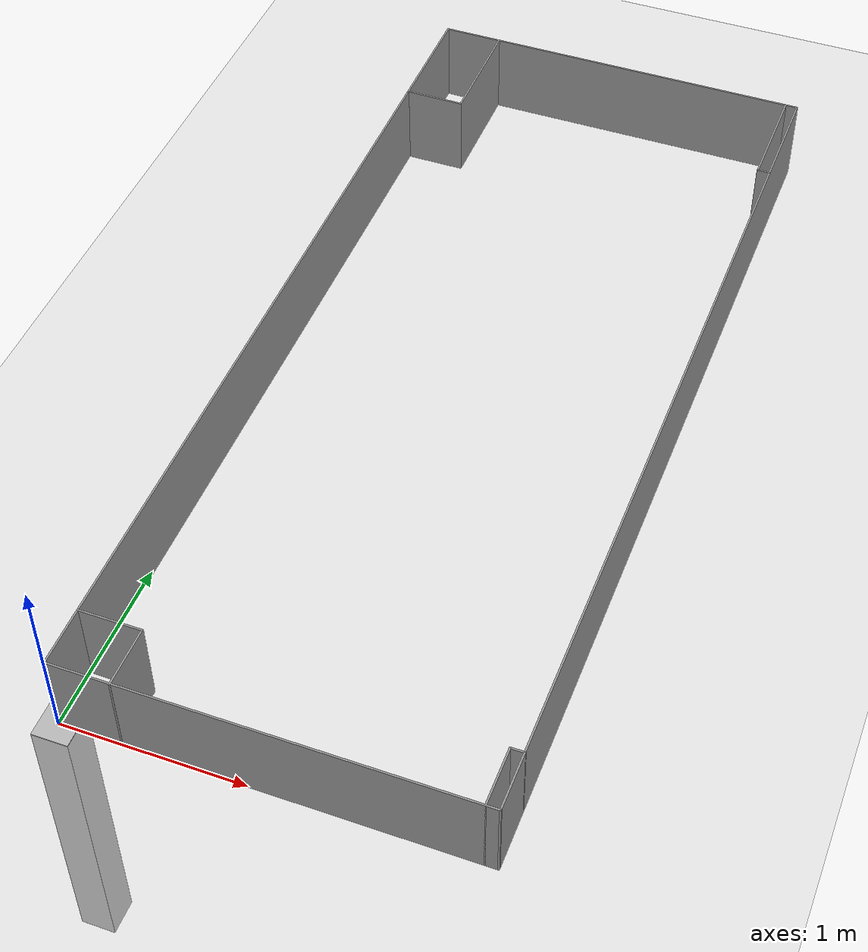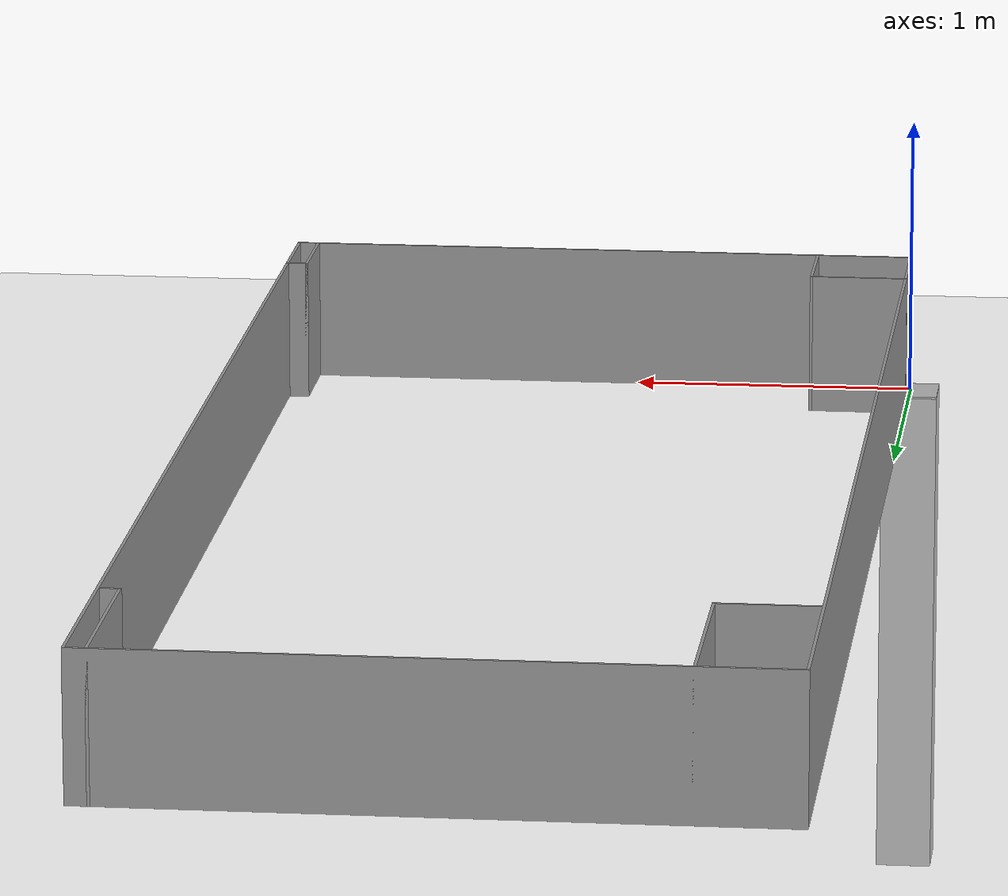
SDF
<sdf version="1.7">
 <world name="default">
  <light name="sun" type="directional">
   <pose>0 0 10 0 -0 0</pose>
   <diffuse>0.8 0.8 0.8 1</diffuse>
   <specular>0.2 0.2 0.2 1</specular>
   <attenuation>
    <range>1000</range>
    <constant>0.9</constant>
    <linear>0.01</linear>
    <quadratic>0.001</quadratic>
   </attenuation>
   <direction>-0.5 0.1 -0.9</direction>
   <spot><inner_angle>0</inner_angle><outer_angle>0</outer_angle><falloff>0</falloff></spot>
  </light>
  <model name="ground_plane">
   <static>1</static>
   <link name="link">
    <collision name="collision">
     <geometry><plane><normal>0 0 1</normal><size>100 100</size></plane></geometry>
     <surface>
      <contact><collide_bitmask>65535</collide_bitmask></contact>
      <friction><ode><mu>100</mu><mu2>50</mu2></ode></friction>
     </surface>
    </collision>
    <visual name="visual">
     <cast_shadows>0</cast_shadows>
     <geometry><plane><normal>0 0 1</normal><size>100 100</size></plane></geometry>
     <material>
      <script><uri>file://media/materials/scripts/gazebo.material</uri><name>Gazebo/Grey</name></script>
     </material>
    </visual>
   </link>
  </model>
  <gravity>0 0 -9.8</gravity>
  <magnetic_field>6e-06 2.3e-05 -4.2e-05</magnetic_field>
  <atmosphere type="adiabatic"/>
  <physics type="ode">
   <max_step_size>0.001</max_step_size>
   <real_time_factor>1</real_time_factor>
   <real_time_update_rate>1000</real_time_update_rate>
  </physics>
  <scene><ambient>0.4 0.4 0.4 1</ambient><background>0.7 0.7 0.7 1</background><shadows>1</shadows></scene>
  <spherical_coordinates>
   <surface_model>EARTH_WGS84</surface_model>
   <latitude_deg>0</latitude_deg>
   <longitude_deg>0</longitude_deg>
   <elevation>0</elevation>
   <heading_deg>0</heading_deg>
  </spherical_coordinates>
  <model name="c205">
   <pose>1.13 2.63 0 0 -0 0</pose>
   <link name="Wall_12">
    <collision name="Wall_12_Collision">
     <geometry><box><size>5.27 0.01 0.5</size></box></geometry>
     <pose>0 0 0.25 0 -0 0</pose>
    </collision>
    <visual name="Wall_12_Visual">
     <pose>0 0 0.25 0 -0 0</pose>
     <geometry><box><size>5.27 0.01 0.5</size></box></geometry>
     <material>
      <script><uri>file://media/materials/scripts/gazebo.material</uri><name>Gazebo/Grey</name></script>
      <ambient>1 1 1 0.1</ambient>
     </material>
     <meta><layer>0</layer></meta>
    </visual>
    <pose>-1.125 0.000538 0 0 -0 1.5708</pose>
   </link>
   <link name="Wall_17">
    <collision name="Wall_17_Collision">
     <geometry><box><size>2.26 0.01 0.5</size></box></geometry>
     <pose>0 0 0.25 0 -0 0</pose>
    </collision>
    <visual name="Wall_17_Visual">
     <pose>0 0 0.25 0 -0 0</pose>
     <geometry><box><size>2.26 0.01 0.5</size></box></geometry>
     <material>
      <script><uri>file://media/materials/scripts/gazebo.material</uri><name>Gazebo/Grey</name></script>
      <ambient>1 1 1 0.1</ambient>
     </material>
     <meta><layer>0</layer></meta>
    </visual>
    <pose>-0 2.63054 0 0 -0 0</pose>
   </link>
   <link name="Wall_19">
    <collision name="Wall_19_Collision">
     <geometry><box><size>5.27 0.01 0.5</size></box></geometry>
     <pose>0 0 0.25 0 -0 0</pose>
    </collision>
    <visual name="Wall_19_Visual">
     <pose>0 0 0.25 0 -0 0</pose>
     <geometry><box><size>5.27 0.01 0.5</size></box></geometry>
     <material>
      <script><uri>file://media/materials/scripts/gazebo.material</uri><name>Gazebo/Grey</name></script>
      <ambient>1 1 1 0.1</ambient>
     </material>
     <meta><layer>0</layer></meta>
    </visual>
    <pose>1.125 0.000538 0 0 -0 -1.5708</pose>
   </link>
   <link name="Wall_2">
    <collision name="Wall_2_Collision">
     <geometry><box><size>2.26 0.01 0.5</size></box></geometry>
     <pose>0 0 0.25 0 -0 0</pose>
    </collision>
    <visual name="Wall_2_Visual">
     <pose>0 0 0.25 0 -0 0</pose>
     <geometry><box><size>2.26 0.01 0.5</size></box></geometry>
     <material>
      <script><uri>file://media/materials/scripts/gazebo.material</uri><name>Gazebo/Grey</name></script>
      <ambient>1 1 1 0.1</ambient>
     </material>
     <meta><layer>0</layer></meta>
    </visual>
    <pose>-0 -2.62946 0 0 -0 0</pose>
   </link>
   <link name="Wall_27">
    <collision name="Wall_27_Collision">
     <geometry><box><size>0.35 0.01 0.5</size></box></geometry>
     <pose>0 0 0.25 0 -0 0</pose>
    </collision>
    <visual name="Wall_27_Visual">
     <pose>0 0 0.25 0 -0 0</pose>
     <geometry><box><size>0.35 0.01 0.5</size></box></geometry>
     <material>
      <script><uri>file://media/materials/scripts/gazebo.material</uri><name>Gazebo/Grey</name></script>
      <ambient>1 1 1 0.1</ambient>
     </material>
     <meta><layer>0</layer></meta>
    </visual>
    <pose>-0.955 -2.30046 0 0 -0 0</pose>
   </link>
   <link name="Wall_28">
    <collision name="Wall_28_Collision">
     <geometry><box><size>0.340151 0.01 0.5</size></box></geometry>
     <pose>0 0 0.25 0 -0 0</pose>
    </collision>
    <visual name="Wall_28_Visual">
     <pose>0 0 0.25 0 -0 0</pose>
     <geometry><box><size>0.340151 0.01 0.5</size></box></geometry>
     <material>
      <script><uri>file://media/materials/scripts/gazebo.material</uri><name>Gazebo/Grey</name></script>
      <ambient>1 1 1 0.1</ambient>
     </material>
     <meta><layer>0</layer></meta>
    </visual>
    <pose>-0.785 -2.46546 0 0 -0 -1.5708</pose>
   </link>
   <link name="Wall_30">
    <collision name="Wall_30_Collision">
     <geometry><box><size>0.35 0.01 0.5</size></box></geometry>
     <pose>0 0 0.25 0 -0 0</pose>
    </collision>
    <visual name="Wall_30_Visual">
     <pose>0 0 0.25 0 -0 0</pose>
     <geometry><box><size>0.35 0.01 0.5</size></box></geometry>
     <material>
      <script><uri>file://media/materials/scripts/gazebo.material</uri><name>Gazebo/Grey</name></script>
      <ambient>1 1 1 0.1</ambient>
     </material>
     <meta><layer>0</layer></meta>
    </visual>
    <pose>-0.955 1.95054 0 0 -0 0</pose>
   </link>
   <link name="Wall_31">
    <collision name="Wall_31_Collision">
     <geometry><box><size>0.69 0.01 0.5</size></box></geometry>
     <pose>0 0 0.25 0 -0 0</pose>
    </collision>
    <visual name="Wall_31_Visual">
     <pose>0 0 0.25 0 -0 0</pose>
     <geometry><box><size>0.69 0.01 0.5</size></box></geometry>
     <material>
      <script><uri>file://media/materials/scripts/gazebo.material</uri><name>Gazebo/Grey</name></script>
      <ambient>1 1 1 0.1</ambient>
     </material>
     <meta><layer>0</layer></meta>
    </visual>
    <pose>-0.785 2.29054 0 0 -0 1.5708</pose>
   </link>
   <link name="Wall_34">
    <collision name="Wall_34_Collision">
     <geometry><box><size>0.66 0.01 0.5</size></box></geometry>
     <pose>0 0 0.25 0 -0 0</pose>
    </collision>
    <visual name="Wall_34_Visual">
     <pose>0 0 0.25 0 -0 0</pose>
     <geometry><box><size>0.66 0.01 0.5</size></box></geometry>
     <material>
      <script><uri>file://media/materials/scripts/gazebo.material</uri><name>Gazebo/Grey</name></script>
      <ambient>1 1 1 0.1</ambient>
     </material>
     <meta><layer>0</layer></meta>
    </visual>
    <pose>1.055 2.30554 0 0 -0 -1.5708</pose>
   </link>
   <link name="Wall_35">
    <collision name="Wall_35_Collision">
     <geometry><box><size>0.08 0.01 0.5</size></box></geometry>
     <pose>0 0 0.25 0 -0 0</pose>
    </collision>
    <visual name="Wall_35_Visual">
     <pose>0 0 0.25 0 -0 0</pose>
     <geometry><box><size>0.08 0.01 0.5</size></box></geometry>
     <material>
      <script><uri>file://media/materials/scripts/gazebo.material</uri><name>Gazebo/Grey</name></script>
      <ambient>1 1 1 0.1</ambient>
     </material>
     <meta><layer>0</layer></meta>
    </visual>
    <pose>1.09 1.98054 0 0 -0 0</pose>
   </link>
   <link name="Wall_39">
    <collision name="Wall_39_Collision">
     <geometry><box><size>0.33 0.01 0.5</size></box></geometry>
     <pose>0 0 0.25 0 -0 0</pose>
    </collision>
    <visual name="Wall_39_Visual">
     <pose>0 0 0.25 0 -0 0</pose>
     <geometry><box><size>0.33 0.01 0.5</size></box></geometry>
     <material>
      <script><uri>file://media/materials/scripts/gazebo.material</uri><name>Gazebo/Grey</name></script>
      <ambient>1 1 1 0.1</ambient>
     </material>
     <meta><layer>0</layer></meta>
    </visual>
    <pose>1.055 -2.46946 0 0 -0 1.5708</pose>
   </link>
   <link name="Wall_40">
    <collision name="Wall_40_Collision">
     <geometry><box><size>0.08 0.01 0.5</size></box></geometry>
     <pose>0 0 0.25 0 -0 0</pose>
    </collision>
    <visual name="Wall_40_Visual">
     <pose>0 0 0.25 0 -0 0</pose>
     <geometry><box><size>0.08 0.01 0.5</size></box></geometry>
     <material>
      <script><uri>file://media/materials/scripts/gazebo.material</uri><name>Gazebo/Grey</name></script>
      <ambient>1 1 1 0.1</ambient>
     </material>
     <meta><layer>0</layer></meta>
    </visual>
    <pose>1.09 -2.30946 0 0 -0 0</pose>
   </link>
   <static>1</static>
  </model>
  <model name="box111">
   <link name="link">
    <collision name="collision11"><geometry><box><size>0.2 0.2 1.8</size></box></geometry></collision>
    <visual name="visual11">
     <pose>0 0 -0.9 0 0 0</pose>
     <geometry><box><size>0.2 0.2 1.8</size></box></geometry>
    </visual>
   </link>
   <plugin name="push_animate_1" filename="libanimated_box_1.so"/>
  </model>
 </world>
</sdf>
